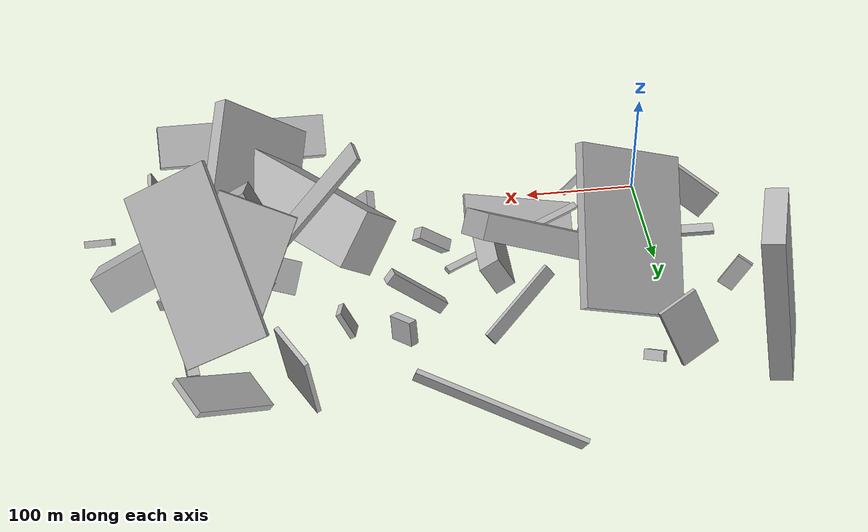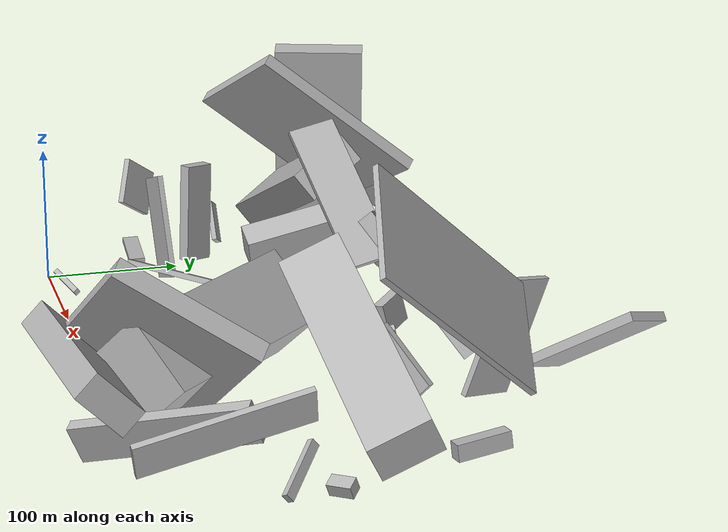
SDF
<sdf version="1.6">
 <world name="default">
  <model name="building_1">
   <static>0</static>
   <pose>257.96712954495524 115.34495477010938 56.59395633686197 1.5918130010340243 -0.7548724924944787 0.7173684398075877</pose>
   <link name="link">
    <gravity>0</gravity>
    <pose>0 0 75.0 0 0 0</pose>
    <collision name="collision"><geometry><box><size>48 53 150</size></box></geometry></collision>
    <visual name="visual">
     <cast_shadows>0</cast_shadows>
     <geometry><box><size>48 53 150</size></box></geometry>
     <material>
      <script>
       <uri>model://HANNAS_wall/materials/scripts</uri>
       <uri>model://HANNAS_wall/materials/textures</uri>
       <name>vrc/HANNAS_wall</name>
      </script>
     </material>
    </visual>
   </link>
  </model>
  <model name="building_5">
   <static>0</static>
   <pose>68.84889917040479 11.528488092400732 9.53651642713653 0.9544034416201299 -0.7473372922193956 -0.5799234906361043</pose>
   <link name="link">
    <gravity>0</gravity>
    <pose>0 0 12.5 0 0 0</pose>
    <collision name="collision"><geometry><box><size>6 4 25</size></box></geometry></collision>
    <visual name="visual">
     <cast_shadows>0</cast_shadows>
     <geometry><box><size>6 4 25</size></box></geometry>
     <material>
      <script>
       <uri>model://HANNAS_wall/materials/scripts</uri>
       <uri>model://HANNAS_wall/materials/textures</uri>
       <name>vrc/HANNAS_wall</name>
      </script>
     </material>
    </visual>
   </link>
  </model>
  <model name="building_6">
   <static>0</static>
   <pose>326.6928345307883 247.61314087608045 44.36854878949452 2.4253544101427686 -1.261972309877935 1.2242816122047875</pose>
   <link name="link">
    <gravity>0</gravity>
    <pose>0 0 2.0 0 0 0</pose>
    <collision name="collision"><geometry><box><size>83 43 4</size></box></geometry></collision>
    <visual name="visual">
     <cast_shadows>0</cast_shadows>
     <geometry><box><size>83 43 4</size></box></geometry>
     <material>
      <script>
       <uri>model://HANNAS_wall/materials/scripts</uri>
       <uri>model://HANNAS_wall/materials/textures</uri>
       <name>vrc/HANNAS_wall</name>
      </script>
     </material>
    </visual>
   </link>
  </model>
  <model name="building_8">
   <static>0</static>
   <pose>127.26413432869545 95.06428674919226 30.198048702746505 0.13663669713281945 1.2547473310186312 -0.8781037275685912</pose>
   <link name="link">
    <gravity>0</gravity>
    <pose>0 0 3.0 0 0 0</pose>
    <collision name="collision"><geometry><box><size>4 150 6</size></box></geometry></collision>
    <visual name="visual">
     <cast_shadows>0</cast_shadows>
     <geometry><box><size>4 150 6</size></box></geometry>
     <material>
      <script>
       <uri>model://HANNAS_wall/materials/scripts</uri>
       <uri>model://HANNAS_wall/materials/textures</uri>
       <name>vrc/HANNAS_wall</name>
      </script>
     </material>
    </visual>
   </link>
  </model>
  <model name="building_12">
   <static>0</static>
   <pose>67.13787735128095 167.68225794805429 23.812593833354367 2.634482589205064 0.6201547892839577 1.0844572797833671</pose>
   <link name="link">
    <gravity>0</gravity>
    <pose>0 0 2.0 0 0 0</pose>
    <collision name="collision"><geometry><box><size>26 4 4</size></box></geometry></collision>
    <visual name="visual">
     <cast_shadows>0</cast_shadows>
     <geometry><box><size>26 4 4</size></box></geometry>
     <material>
      <script>
       <uri>model://HANNAS_wall/materials/scripts</uri>
       <uri>model://HANNAS_wall/materials/textures</uri>
       <name>vrc/HANNAS_wall</name>
      </script>
     </material>
    </visual>
   </link>
  </model>
  <model name="building_13">
   <static>0</static>
   <pose>439.77772410888974 -13.461153774799975 35.60706444422148 -1.1556499502166577 -1.061910394291274 -0.3257665601338539</pose>
   <link name="link">
    <gravity>0</gravity>
    <pose>0 0 54.5 0 0 0</pose>
    <collision name="collision"><geometry><box><size>27 4 109</size></box></geometry></collision>
    <visual name="visual">
     <cast_shadows>0</cast_shadows>
     <geometry><box><size>27 4 109</size></box></geometry>
     <material>
      <script>
       <uri>model://HANNAS_wall/materials/scripts</uri>
       <uri>model://HANNAS_wall/materials/textures</uri>
       <name>vrc/HANNAS_wall</name>
      </script>
     </material>
    </visual>
   </link>
  </model>
  <model name="building_14">
   <static>0</static>
   <pose>24.992960512267217 264.097732272833 57.16226482533292 -1.2639147197748972 -0.34937879324271787 1.9065921060187743</pose>
   <link name="link">
    <gravity>0</gravity>
    <pose>0 0 18.0 0 0 0</pose>
    <collision name="collision"><geometry><box><size>4 55 36</size></box></geometry></collision>
    <visual name="visual">
     <cast_shadows>0</cast_shadows>
     <geometry><box><size>4 55 36</size></box></geometry>
     <material>
      <script>
       <uri>model://HANNAS_wall/materials/scripts</uri>
       <uri>model://HANNAS_wall/materials/textures</uri>
       <name>vrc/HANNAS_wall</name>
      </script>
     </material>
    </visual>
   </link>
  </model>
  <model name="building_16">
   <static>0</static>
   <pose>277.626140735199 184.9501165475764 19.780387266991752 -0.2561990988891212 -0.5110941355141184 3.058678142969772</pose>
   <link name="link">
    <gravity>0</gravity>
    <pose>0 0 12.5 0 0 0</pose>
    <collision name="collision"><geometry><box><size>5 18 25</size></box></geometry></collision>
    <visual name="visual">
     <cast_shadows>0</cast_shadows>
     <geometry><box><size>5 18 25</size></box></geometry>
     <material>
      <script>
       <uri>model://HANNAS_wall/materials/scripts</uri>
       <uri>model://HANNAS_wall/materials/textures</uri>
       <name>vrc/HANNAS_wall</name>
      </script>
     </material>
    </visual>
   </link>
  </model>
  <model name="building_18">
   <static>0</static>
   <pose>29.97122194619949 239.05011576336355 22.392333776561763 2.7268752926456954 0.5771335624533845 -2.4736251488292638</pose>
   <link name="link">
    <gravity>0</gravity>
    <pose>0 0 4.5 0 0 0</pose>
    <collision name="collision"><geometry><box><size>5 19 9</size></box></geometry></collision>
    <visual name="visual">
     <cast_shadows>0</cast_shadows>
     <geometry><box><size>5 19 9</size></box></geometry>
     <material>
      <script>
       <uri>model://HANNAS_wall/materials/scripts</uri>
       <uri>model://HANNAS_wall/materials/textures</uri>
       <name>vrc/HANNAS_wall</name>
      </script>
     </material>
    </visual>
   </link>
  </model>
  <model name="building_20">
   <static>0</static>
   <pose>41.00224823577473 78.73377401788547 45.44308724249461 1.5321633128563323 0.30480068964945095 -3.0817265529111175</pose>
   <link name="link">
    <gravity>0</gravity>
    <pose>0 0 2.0 0 0 0</pose>
    <collision name="collision"><geometry><box><size>39 76 4</size></box></geometry></collision>
    <visual name="visual">
     <cast_shadows>0</cast_shadows>
     <geometry><box><size>39 76 4</size></box></geometry>
     <material>
      <script>
       <uri>model://HANNAS_wall/materials/scripts</uri>
       <uri>model://HANNAS_wall/materials/textures</uri>
       <name>vrc/HANNAS_wall</name>
      </script>
     </material>
    </visual>
   </link>
  </model>
  <model name="building_22">
   <static>0</static>
   <pose>-60.878617618782286 232.2143079956557 78.26545734117074 -0.04846441238205097 -1.4066705913590303 -0.2480353239598528</pose>
   <link name="link">
    <gravity>0</gravity>
    <pose>0 0 9.5 0 0 0</pose>
    <collision name="collision"><geometry><box><size>150 70 19</size></box></geometry></collision>
    <visual name="visual">
     <cast_shadows>0</cast_shadows>
     <geometry><box><size>150 70 19</size></box></geometry>
     <material>
      <script>
       <uri>model://HANNAS_wall/materials/scripts</uri>
       <uri>model://HANNAS_wall/materials/textures</uri>
       <name>vrc/HANNAS_wall</name>
      </script>
     </material>
    </visual>
   </link>
  </model>
  <model name="building_25">
   <static>0</static>
   <pose>234.67018446273119 261.39096662920264 40.65809519820805 -2.1004676798282396 -0.9665694401337008 1.6369618636722827</pose>
   <link name="link">
    <gravity>0</gravity>
    <pose>0 0 75.0 0 0 0</pose>
    <collision name="collision"><geometry><box><size>32 4 150</size></box></geometry></collision>
    <visual name="visual">
     <cast_shadows>0</cast_shadows>
     <geometry><box><size>32 4 150</size></box></geometry>
     <material>
      <script>
       <uri>model://HANNAS_wall/materials/scripts</uri>
       <uri>model://HANNAS_wall/materials/textures</uri>
       <name>vrc/HANNAS_wall</name>
      </script>
     </material>
    </visual>
   </link>
  </model>
  <model name="building_31">
   <static>0</static>
   <pose>345.69740009835914 24.489821419486482 75.39131351540311 2.374194926307709 -0.6900682798249037 0.3231188831857933</pose>
   <link name="link">
    <gravity>0</gravity>
    <pose>0 0 7.0 0 0 0</pose>
    <collision name="collision"><geometry><box><size>95 101 14</size></box></geometry></collision>
    <visual name="visual">
     <cast_shadows>0</cast_shadows>
     <geometry><box><size>95 101 14</size></box></geometry>
     <material>
      <script>
       <uri>model://HANNAS_wall/materials/scripts</uri>
       <uri>model://HANNAS_wall/materials/textures</uri>
       <name>vrc/HANNAS_wall</name>
      </script>
     </material>
    </visual>
   </link>
  </model>
  <model name="building_32">
   <static>0</static>
   <pose>361.21602472145105 -36.207755758616486 58.40989108416554 0.06834976194708026 -0.7870834835555162 -1.5504392179237758</pose>
   <link name="link">
    <gravity>0</gravity>
    <pose>0 0 9.5 0 0 0</pose>
    <collision name="collision"><geometry><box><size>37 150 19</size></box></geometry></collision>
    <visual name="visual">
     <cast_shadows>0</cast_shadows>
     <geometry><box><size>37 150 19</size></box></geometry>
     <material>
      <script>
       <uri>model://HANNAS_wall/materials/scripts</uri>
       <uri>model://HANNAS_wall/materials/textures</uri>
       <name>vrc/HANNAS_wall</name>
      </script>
     </material>
    </visual>
   </link>
  </model>
  <model name="building_34">
   <static>0</static>
   <pose>167.69613932715885 225.49097521490734 37.73761442672334 1.05779381393914 0.37281985695913034 -1.1376608386378892</pose>
   <link name="link">
    <gravity>0</gravity>
    <pose>0 0 38.5 0 0 0</pose>
    <collision name="collision"><geometry><box><size>4 12 77</size></box></geometry></collision>
    <visual name="visual">
     <cast_shadows>0</cast_shadows>
     <geometry><box><size>4 12 77</size></box></geometry>
     <material>
      <script>
       <uri>model://HANNAS_wall/materials/scripts</uri>
       <uri>model://HANNAS_wall/materials/textures</uri>
       <name>vrc/HANNAS_wall</name>
      </script>
     </material>
    </visual>
   </link>
  </model>
  <model name="building_37">
   <static>0</static>
   <pose>404.60462431942966 188.6028965019417 111.98241021149241 2.3318957492295835 -0.6933093194384791 -1.2132861879049708</pose>
   <link name="link">
    <gravity>0</gravity>
    <pose>0 0 2.0 0 0 0</pose>
    <collision name="collision"><geometry><box><size>150 83 4</size></box></geometry></collision>
    <visual name="visual">
     <cast_shadows>0</cast_shadows>
     <geometry><box><size>150 83 4</size></box></geometry>
     <material>
      <script>
       <uri>model://HANNAS_wall/materials/scripts</uri>
       <uri>model://HANNAS_wall/materials/textures</uri>
       <name>vrc/HANNAS_wall</name>
      </script>
     </material>
    </visual>
   </link>
  </model>
  <model name="building_38">
   <static>0</static>
   <pose>112.35351711302906 150.07232675141634 79.1598094794446 -0.9827598100574074 -0.4093556552665202 0.07280595867250454</pose>
   <link name="link">
    <gravity>0</gravity>
    <pose>0 0 23.0 0 0 0</pose>
    <collision name="collision"><geometry><box><size>150 22 46</size></box></geometry></collision>
    <visual name="visual">
     <cast_shadows>0</cast_shadows>
     <geometry><box><size>150 22 46</size></box></geometry>
     <material>
      <script>
       <uri>model://HANNAS_wall/materials/scripts</uri>
       <uri>model://HANNAS_wall/materials/textures</uri>
       <name>vrc/HANNAS_wall</name>
      </script>
     </material>
    </visual>
   </link>
  </model>
  <model name="building_39">
   <static>0</static>
   <pose>476.7361840287969 80.21881671584897 51.90117466969142 -2.4390860977141897 -0.8726806566190729 -1.5236142229103518</pose>
   <link name="link">
    <gravity>0</gravity>
    <pose>0 0 19.5 0 0 0</pose>
    <collision name="collision"><geometry><box><size>6 4 39</size></box></geometry></collision>
    <visual name="visual">
     <cast_shadows>0</cast_shadows>
     <geometry><box><size>6 4 39</size></box></geometry>
     <material>
      <script>
       <uri>model://HANNAS_wall/materials/scripts</uri>
       <uri>model://HANNAS_wall/materials/textures</uri>
       <name>vrc/HANNAS_wall</name>
      </script>
     </material>
    </visual>
   </link>
  </model>
  <model name="building_42">
   <static>0</static>
   <pose>149.5566873499409 159.10094480154245 57.948226498838196 0.5503954668029656 -0.21824341251643886 1.5355521848849736</pose>
   <link name="link">
    <gravity>0</gravity>
    <pose>0 0 13.5 0 0 0</pose>
    <collision name="collision"><geometry><box><size>75 18 27</size></box></geometry></collision>
    <visual name="visual">
     <cast_shadows>0</cast_shadows>
     <geometry><box><size>75 18 27</size></box></geometry>
     <material>
      <script>
       <uri>model://HANNAS_wall/materials/scripts</uri>
       <uri>model://HANNAS_wall/materials/textures</uri>
       <name>vrc/HANNAS_wall</name>
      </script>
     </material>
    </visual>
   </link>
  </model>
  <model name="building_43">
   <static>0</static>
   <pose>390.38392668905874 201.6385941655491 61.87361838638586 -0.6713968791306343 0.2860012006860779 2.819797407482486</pose>
   <link name="link">
    <gravity>0</gravity>
    <pose>0 0 51.0 0 0 0</pose>
    <collision name="collision"><geometry><box><size>67 10 102</size></box></geometry></collision>
    <visual name="visual">
     <cast_shadows>0</cast_shadows>
     <geometry><box><size>67 10 102</size></box></geometry>
     <material>
      <script>
       <uri>model://HANNAS_wall/materials/scripts</uri>
       <uri>model://HANNAS_wall/materials/textures</uri>
       <name>vrc/HANNAS_wall</name>
      </script>
     </material>
    </visual>
   </link>
  </model>
  <model name="building_44">
   <static>0</static>
   <pose>3.839348999649438 178.95775744031582 91.9631122847648 0.9458689012642614 -0.7073879490175725 2.307690191215512</pose>
   <link name="link">
    <gravity>0</gravity>
    <pose>0 0 52.0 0 0 0</pose>
    <collision name="collision"><geometry><box><size>9 136 104</size></box></geometry></collision>
    <visual name="visual">
     <cast_shadows>0</cast_shadows>
     <geometry><box><size>9 136 104</size></box></geometry>
     <material>
      <script>
       <uri>model://HANNAS_wall/materials/scripts</uri>
       <uri>model://HANNAS_wall/materials/textures</uri>
       <name>vrc/HANNAS_wall</name>
      </script>
     </material>
    </visual>
   </link>
  </model>
  <model name="building_45">
   <static>0</static>
   <pose>334.50936809765403 156.99811099058812 103.89226345155797 0.26965925732977786 -0.739891587030817 -0.08507786372901584</pose>
   <link name="link">
    <gravity>0</gravity>
    <pose>0 0 50.0 0 0 0</pose>
    <collision name="collision"><geometry><box><size>4 30 100</size></box></geometry></collision>
    <visual name="visual">
     <cast_shadows>0</cast_shadows>
     <geometry><box><size>4 30 100</size></box></geometry>
     <material>
      <script>
       <uri>model://HANNAS_wall/materials/scripts</uri>
       <uri>model://HANNAS_wall/materials/textures</uri>
       <name>vrc/HANNAS_wall</name>
      </script>
     </material>
    </visual>
   </link>
  </model>
  <model name="building_46">
   <static>0</static>
   <pose>226.07624470516598 210.29494284751877 81.41586086363534 1.8474968175146849 -0.7027935195348723 -0.020515367014011042</pose>
   <link name="link">
    <gravity>0</gravity>
    <pose>0 0 5.0 0 0 0</pose>
    <collision name="collision"><geometry><box><size>57 11 10</size></box></geometry></collision>
    <visual name="visual">
     <cast_shadows>0</cast_shadows>
     <geometry><box><size>57 11 10</size></box></geometry>
     <material>
      <script>
       <uri>model://HANNAS_wall/materials/scripts</uri>
       <uri>model://HANNAS_wall/materials/textures</uri>
       <name>vrc/HANNAS_wall</name>
      </script>
     </material>
    </visual>
   </link>
  </model>
  <model name="building_48">
   <static>0</static>
   <pose>166.035471849586 52.78451940279646 30.99211564306571 1.8624465479519579 -0.45987016812388 -1.6251221505006042</pose>
   <link name="link">
    <gravity>0</gravity>
    <pose>0 0 51.5 0 0 0</pose>
    <collision name="collision"><geometry><box><size>34 4 103</size></box></geometry></collision>
    <visual name="visual">
     <cast_shadows>0</cast_shadows>
     <geometry><box><size>34 4 103</size></box></geometry>
     <material>
      <script>
       <uri>model://HANNAS_wall/materials/scripts</uri>
       <uri>model://HANNAS_wall/materials/textures</uri>
       <name>vrc/HANNAS_wall</name>
      </script>
     </material>
    </visual>
   </link>
  </model>
  <model name="building_50">
   <static>0</static>
   <pose>-70.37703650503478 143.96287199500838 27.93305884957219 2.6646218035995486 -0.22186638004959536 1.2007814384351059</pose>
   <link name="link">
    <gravity>0</gravity>
    <pose>0 0 16.0 0 0 0</pose>
    <collision name="collision"><geometry><box><size>4 15 32</size></box></geometry></collision>
    <visual name="visual">
     <cast_shadows>0</cast_shadows>
     <geometry><box><size>4 15 32</size></box></geometry>
     <material>
      <script>
       <uri>model://HANNAS_wall/materials/scripts</uri>
       <uri>model://HANNAS_wall/materials/textures</uri>
       <name>vrc/HANNAS_wall</name>
      </script>
     </material>
    </visual>
   </link>
  </model>
  <model name="building_52">
   <static>0</static>
   <pose>-3.27091327053041 125.39593064959706 43.06506320309457 -1.5192076694769117 0.01084398927924843 -2.67312114324598</pose>
   <link name="link">
    <gravity>0</gravity>
    <pose>0 0 11.0 0 0 0</pose>
    <collision name="collision"><geometry><box><size>10 75 22</size></box></geometry></collision>
    <visual name="visual">
     <cast_shadows>0</cast_shadows>
     <geometry><box><size>10 75 22</size></box></geometry>
     <material>
      <script>
       <uri>model://HANNAS_wall/materials/scripts</uri>
       <uri>model://HANNAS_wall/materials/textures</uri>
       <name>vrc/HANNAS_wall</name>
      </script>
     </material>
    </visual>
   </link>
  </model>
  <model name="building_53">
   <static>0</static>
   <pose>360.29665032627054 260.74111276352346 36.75261091218013 -0.9869547311745309 -0.2520811010343447 -1.0534593391832512</pose>
   <link name="link">
    <gravity>0</gravity>
    <pose>0 0 42.5 0 0 0</pose>
    <collision name="collision"><geometry><box><size>36 6 85</size></box></geometry></collision>
    <visual name="visual">
     <cast_shadows>0</cast_shadows>
     <geometry><box><size>36 6 85</size></box></geometry>
     <material>
      <script>
       <uri>model://HANNAS_wall/materials/scripts</uri>
       <uri>model://HANNAS_wall/materials/textures</uri>
       <name>vrc/HANNAS_wall</name>
      </script>
     </material>
    </visual>
   </link>
  </model>
  <model name="building_55">
   <static>0</static>
   <pose>-35.390103291501276 66.63452444738462 4.440479311401978 1.5368046650215983 -0.04963786470938847 3.072342773208943</pose>
   <link name="link">
    <gravity>0</gravity>
    <pose>0 0 6.0 0 0 0</pose>
    <collision name="collision"><geometry><box><size>50 4 12</size></box></geometry></collision>
    <visual name="visual">
     <cast_shadows>0</cast_shadows>
     <geometry><box><size>50 4 12</size></box></geometry>
     <material>
      <script>
       <uri>model://HANNAS_wall/materials/scripts</uri>
       <uri>model://HANNAS_wall/materials/textures</uri>
       <name>vrc/HANNAS_wall</name>
      </script>
     </material>
    </visual>
   </link>
  </model>
  <model name="building_56">
   <static>0</static>
   <pose>415.44199170119555 106.21657096649798 69.570634047938 1.0691458521985595 -0.4723469697052609 -3.0280934240686843</pose>
   <link name="link">
    <gravity>0</gravity>
    <pose>0 0 20.0 0 0 0</pose>
    <collision name="collision"><geometry><box><size>150 33 40</size></box></geometry></collision>
    <visual name="visual">
     <cast_shadows>0</cast_shadows>
     <geometry><box><size>150 33 40</size></box></geometry>
     <material>
      <script>
       <uri>model://HANNAS_wall/materials/scripts</uri>
       <uri>model://HANNAS_wall/materials/textures</uri>
       <name>vrc/HANNAS_wall</name>
      </script>
     </material>
    </visual>
   </link>
  </model>
  <model name="building_59">
   <static>0</static>
   <pose>342.4120948686769 -4.773274249437706 27.41566820992285 -2.22856275964537 -0.08286894660001501 -0.14917608414670902</pose>
   <link name="link">
    <gravity>0</gravity>
    <pose>0 0 2.0 0 0 0</pose>
    <collision name="collision"><geometry><box><size>17 23 4</size></box></geometry></collision>
    <visual name="visual">
     <cast_shadows>0</cast_shadows>
     <geometry><box><size>17 23 4</size></box></geometry>
     <material>
      <script>
       <uri>model://HANNAS_wall/materials/scripts</uri>
       <uri>model://HANNAS_wall/materials/textures</uri>
       <name>vrc/HANNAS_wall</name>
      </script>
     </material>
    </visual>
   </link>
  </model>
  <model name="building_63">
   <static>0</static>
   <pose>362.6935235395029 171.80230411352136 52.29729459584747 2.4130408712708333 -0.08255230274297003 -0.8912409237972434</pose>
   <link name="link">
    <gravity>0</gravity>
    <pose>0 0 6.5 0 0 0</pose>
    <collision name="collision"><geometry><box><size>5 48 13</size></box></geometry></collision>
    <visual name="visual">
     <cast_shadows>0</cast_shadows>
     <geometry><box><size>5 48 13</size></box></geometry>
     <material>
      <script>
       <uri>model://HANNAS_wall/materials/scripts</uri>
       <uri>model://HANNAS_wall/materials/textures</uri>
       <name>vrc/HANNAS_wall</name>
      </script>
     </material>
    </visual>
   </link>
  </model>
  <model name="building_65">
   <static>0</static>
   <pose>391.6127535908581 15.431465260077731 33.570626798830006 2.5266445344933484 1.1504560859213022 1.9831575037979958</pose>
   <link name="link">
    <gravity>0</gravity>
    <pose>0 0 4.0 0 0 0</pose>
    <collision name="collision"><geometry><box><size>26 117 8</size></box></geometry></collision>
    <visual name="visual">
     <cast_shadows>0</cast_shadows>
     <geometry><box><size>26 117 8</size></box></geometry>
     <material>
      <script>
       <uri>model://HANNAS_wall/materials/scripts</uri>
       <uri>model://HANNAS_wall/materials/textures</uri>
       <name>vrc/HANNAS_wall</name>
      </script>
     </material>
    </visual>
   </link>
  </model>
  <model name="building_66">
   <static>0</static>
   <pose>263.16450370347883 45.29155683474532 38.089998973956845 0.5266496742553404 -0.5084066802913161 -1.5851789551820343</pose>
   <link name="link">
    <gravity>0</gravity>
    <pose>0 0 12.5 0 0 0</pose>
    <collision name="collision"><geometry><box><size>16 8 25</size></box></geometry></collision>
    <visual name="visual">
     <cast_shadows>0</cast_shadows>
     <geometry><box><size>16 8 25</size></box></geometry>
     <material>
      <script>
       <uri>model://HANNAS_wall/materials/scripts</uri>
       <uri>model://HANNAS_wall/materials/textures</uri>
       <name>vrc/HANNAS_wall</name>
      </script>
     </material>
    </visual>
   </link>
  </model>
  <model name="building_69">
   <static>0</static>
   <pose>236.27322412296357 203.30558583858428 22.7950354943491 -0.12841134282176475 -0.2356756089732269 2.2632994630697403</pose>
   <link name="link">
    <gravity>0</gravity>
    <pose>0 0 11.0 0 0 0</pose>
    <collision name="collision"><geometry><box><size>23 8 22</size></box></geometry></collision>
    <visual name="visual">
     <cast_shadows>0</cast_shadows>
     <geometry><box><size>23 8 22</size></box></geometry>
     <material>
      <script>
       <uri>model://HANNAS_wall/materials/scripts</uri>
       <uri>model://HANNAS_wall/materials/textures</uri>
       <name>vrc/HANNAS_wall</name>
      </script>
     </material>
    </visual>
   </link>
  </model>
  <model name="building_70">
   <static>0</static>
   <pose>-48.428787283362176 88.22046190414133 46.36555761974712 0.011771763424879532 -1.1157732782083882 2.5672035089457514</pose>
   <link name="link">
    <gravity>0</gravity>
    <pose>0 0 27.5 0 0 0</pose>
    <collision name="collision"><geometry><box><size>34 4 55</size></box></geometry></collision>
    <visual name="visual">
     <cast_shadows>0</cast_shadows>
     <geometry><box><size>34 4 55</size></box></geometry>
     <material>
      <script>
       <uri>model://HANNAS_wall/materials/scripts</uri>
       <uri>model://HANNAS_wall/materials/textures</uri>
       <name>vrc/HANNAS_wall</name>
      </script>
     </material>
    </visual>
   </link>
  </model>
  <model name="building_72">
   <static>0</static>
   <pose>212.04223414206643 78.88780055392606 32.60040312806932 2.3129383176772107 -0.4837307442250873 -1.9119597833008073</pose>
   <link name="link">
    <gravity>0</gravity>
    <pose>0 0 16.5 0 0 0</pose>
    <collision name="collision"><geometry><box><size>11 12 33</size></box></geometry></collision>
    <visual name="visual">
     <cast_shadows>0</cast_shadows>
     <geometry><box><size>11 12 33</size></box></geometry>
     <material>
      <script>
       <uri>model://HANNAS_wall/materials/scripts</uri>
       <uri>model://HANNAS_wall/materials/textures</uri>
       <name>vrc/HANNAS_wall</name>
      </script>
     </material>
    </visual>
   </link>
  </model>
  <model name="building_74">
   <static>0</static>
   <pose>417.82477985880826 183.64739968425982 9.115497149036162 1.461181438506796 0.06136199672946148 -3.039810275744534</pose>
   <link name="link">
    <gravity>0</gravity>
    <pose>0 0 18.0 0 0 0</pose>
    <collision name="collision"><geometry><box><size>10 11 36</size></box></geometry></collision>
    <visual name="visual">
     <cast_shadows>0</cast_shadows>
     <geometry><box><size>10 11 36</size></box></geometry>
     <material>
      <script>
       <uri>model://HANNAS_wall/materials/scripts</uri>
       <uri>model://HANNAS_wall/materials/textures</uri>
       <name>vrc/HANNAS_wall</name>
      </script>
     </material>
    </visual>
   </link>
  </model>
  <model name="building_75">
   <static>0</static>
   <pose>336.46845650797655 152.4064100962943 42.86301914105044 -0.7014807172760799 0.41219040225977077 -3.1193336056778245</pose>
   <link name="link">
    <gravity>0</gravity>
    <pose>0 0 14.5 0 0 0</pose>
    <collision name="collision"><geometry><box><size>24 5 29</size></box></geometry></collision>
    <visual name="visual">
     <cast_shadows>0</cast_shadows>
     <geometry><box><size>24 5 29</size></box></geometry>
     <material>
      <script>
       <uri>model://HANNAS_wall/materials/scripts</uri>
       <uri>model://HANNAS_wall/materials/textures</uri>
       <name>vrc/HANNAS_wall</name>
      </script>
     </material>
    </visual>
   </link>
  </model>
  <model name="building_76">
   <static>0</static>
   <pose>436.2708618758295 107.64307899942312 7.5158058944157204 -2.688520898216973 -0.06490815974759624 0.811361426156975</pose>
   <link name="link">
    <gravity>0</gravity>
    <pose>0 0 4.5 0 0 0</pose>
    <collision name="collision"><geometry><box><size>16 9 9</size></box></geometry></collision>
    <visual name="visual">
     <cast_shadows>0</cast_shadows>
     <geometry><box><size>16 9 9</size></box></geometry>
     <material>
      <script>
       <uri>model://HANNAS_wall/materials/scripts</uri>
       <uri>model://HANNAS_wall/materials/textures</uri>
       <name>vrc/HANNAS_wall</name>
      </script>
     </material>
    </visual>
   </link>
  </model>
 </world>
</sdf>
